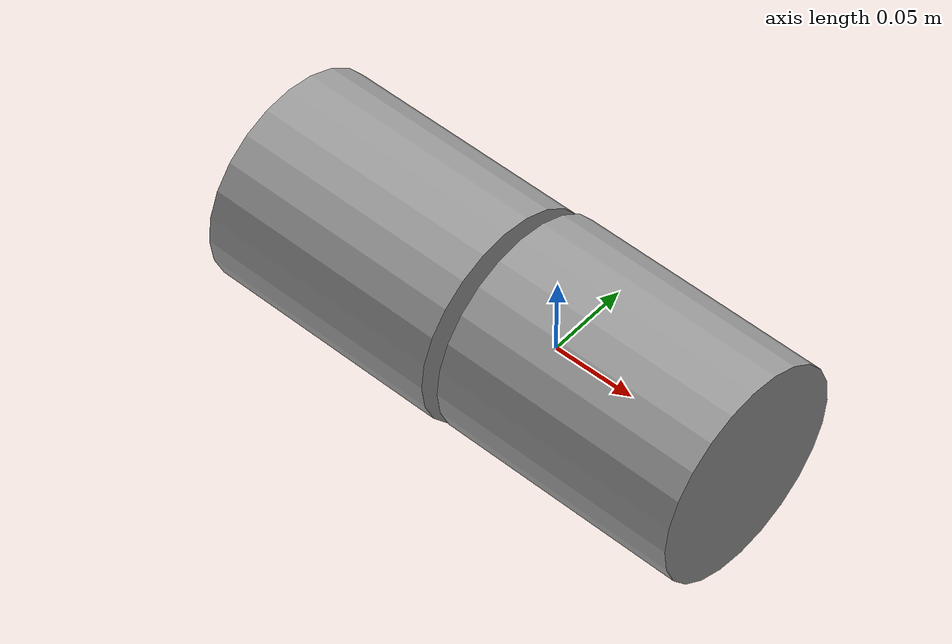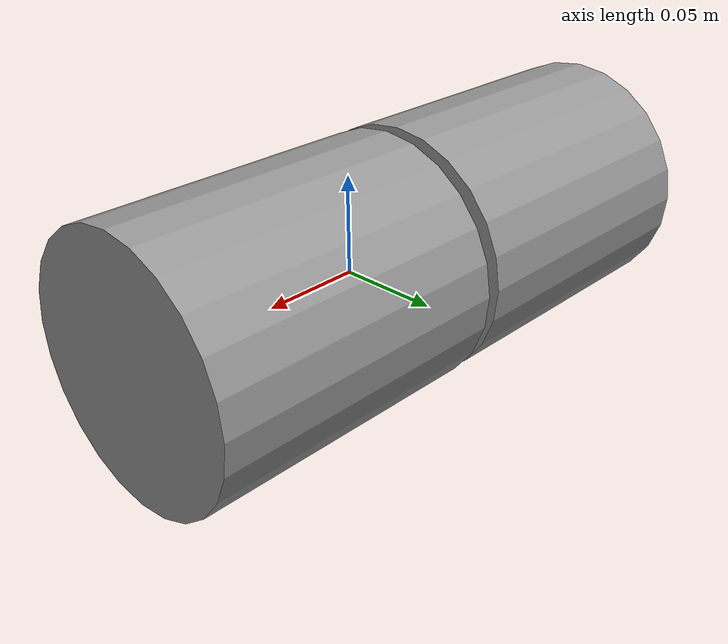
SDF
<?xml version='1.0'?>
<sdf version='1.6'>
  <model name='MittleresGelenk'>
    <link name='MittleresGelenk1'>
      <inertial>
        <mass>5.27</mass>
        <inertia>
          <ixx>1.89583</ixx>
          <ixy>0</ixy>
          <ixz>0</ixz>
          <iyy>1.89583</iyy>
          <iyz>0</iyz>
          <izz>1.625</izz>
        </inertia>
        <pose frame=''>0 0 0 0 -0 0</pose>
      </inertial>
      <pose frame=''>-0.1105 0 -0 3.01682 1.56535 3.00517</pose>
      <gravity>1</gravity>
      <self_collide>0</self_collide>
      <kinematic>0</kinematic>
      <enable_wind>0</enable_wind>
      <visual name='visual'>
        <pose frame=''>0 0 0 0 -0 0</pose>
        <geometry>
          <cylinder>
            <radius>0.065</radius>
            <length>0.152</length>
          </cylinder>
        </geometry>
        <material>
          <lighting>1</lighting>
          <script>
            <uri>file://media/materials/scripts/gazebo.material</uri>
            <name>Gazebo/Grey</name>
          </script>
          <shader type='vertex'>
            <normal_map>__default__</normal_map>
          </shader>
          <ambient>0.3 0.3 0.3 1</ambient>
          <diffuse>0.7 0.7 0.7 1</diffuse>
          <specular>0.01 0.01 0.01 1</specular>
          <emissive>0 0 0 1</emissive>
        </material>
        <transparency>0</transparency>
        <cast_shadows>1</cast_shadows>
      </visual>
      <collision name='collision'>
        <laser_retro>0</laser_retro>
        <max_contacts>10</max_contacts>
        <pose frame=''>0 0 0 0 -0 0</pose>
        <geometry>
          <cylinder>
            <radius>0.065</radius>
            <length>0.152</length>
          </cylinder>
        </geometry>
        <surface>
          <friction>
            <ode>
              <mu>1</mu>
              <mu2>1</mu2>
              <fdir1>0 0 0</fdir1>
              <slip1>0</slip1>
              <slip2>0</slip2>
            </ode>
            <torsional>
              <coefficient>1</coefficient>
              <patch_radius>0</patch_radius>
              <surface_radius>0</surface_radius>
              <use_patch_radius>1</use_patch_radius>
              <ode>
                <slip>0</slip>
              </ode>
            </torsional>
          </friction>
          <bounce>
            <restitution_coefficient>0</restitution_coefficient>
            <threshold>1e+06</threshold>
          </bounce>
          <contact>
            <collide_without_contact>0</collide_without_contact>
            <collide_without_contact_bitmask>1</collide_without_contact_bitmask>
            <collide_bitmask>1</collide_bitmask>
            <ode>
              <soft_cfm>0</soft_cfm>
              <soft_erp>0.2</soft_erp>
              <kp>1e+13</kp>
              <kd>1</kd>
              <max_vel>0.01</max_vel>
              <min_depth>0</min_depth>
            </ode>
            <bullet>
              <split_impulse>1</split_impulse>
              <split_impulse_penetration_threshold>-0.01</split_impulse_penetration_threshold>
              <soft_cfm>0</soft_cfm>
              <soft_erp>0.2</soft_erp>
              <kp>1e+13</kp>
              <kd>1</kd>
            </bullet>
          </contact>
        </surface>
      </collision>
    </link>
    <link name='MittleresGelenk2'>
      <inertial>
        <mass>5.27</mass>
        <inertia>
          <ixx>1.89583</ixx>
          <ixy>0</ixy>
          <ixz>0</ixz>
          <iyy>1.89583</iyy>
          <iyz>0</iyz>
          <izz>1.625</izz>
        </inertia>
        <pose frame=''>0 0 0 0 -0 0</pose>
      </inertial>
      <pose frame=''>0.0505 -0 -0 3.01682 1.56535 3.00517</pose>
      <gravity>1</gravity>
      <self_collide>0</self_collide>
      <kinematic>0</kinematic>
      <enable_wind>0</enable_wind>
      <visual name='visual'>
        <pose frame=''>0 0 0 0 -0 0</pose>
        <geometry>
          <cylinder>
            <radius>0.065</radius>
            <length>0.152</length>
          </cylinder>
        </geometry>
        <material>
          <lighting>1</lighting>
          <script>
            <uri>file://media/materials/scripts/gazebo.material</uri>
            <name>Gazebo/Grey</name>
          </script>
          <shader type='vertex'>
            <normal_map>__default__</normal_map>
          </shader>
          <ambient>0.3 0.3 0.3 1</ambient>
          <diffuse>0.7 0.7 0.7 1</diffuse>
          <specular>0.01 0.01 0.01 1</specular>
          <emissive>0 0 0 1</emissive>
        </material>
        <transparency>0</transparency>
        <cast_shadows>1</cast_shadows>
      </visual>
      <collision name='collision'>
        <laser_retro>0</laser_retro>
        <max_contacts>10</max_contacts>
        <pose frame=''>0 0 0 0 -0 0</pose>
        <geometry>
          <cylinder>
            <radius>0.065</radius>
            <length>0.152</length>
          </cylinder>
        </geometry>
        <surface>
          <friction>
            <ode>
              <mu>1</mu>
              <mu2>1</mu2>
              <fdir1>0 0 0</fdir1>
              <slip1>0</slip1>
              <slip2>0</slip2>
            </ode>
            <torsional>
              <coefficient>1</coefficient>
              <patch_radius>0</patch_radius>
              <surface_radius>0</surface_radius>
              <use_patch_radius>1</use_patch_radius>
              <ode>
                <slip>0</slip>
              </ode>
            </torsional>
          </friction>
          <bounce>
            <restitution_coefficient>0</restitution_coefficient>
            <threshold>1e+06</threshold>
          </bounce>
          <contact>
            <collide_without_contact>0</collide_without_contact>
            <collide_without_contact_bitmask>1</collide_without_contact_bitmask>
            <collide_bitmask>1</collide_bitmask>
            <ode>
              <soft_cfm>0</soft_cfm>
              <soft_erp>0.2</soft_erp>
              <kp>1e+13</kp>
              <kd>1</kd>
              <max_vel>0.01</max_vel>
              <min_depth>0</min_depth>
            </ode>
            <bullet>
              <split_impulse>1</split_impulse>
              <split_impulse_penetration_threshold>-0.01</split_impulse_penetration_threshold>
              <soft_cfm>0</soft_cfm>
              <soft_erp>0.2</soft_erp>
              <kp>1e+13</kp>
              <kd>1</kd>
            </bullet>
          </contact>
        </surface>
      </collision>
    </link>
    <joint name='MittleresGelenkLink' type='revolute'>
      <parent>MittleresGelenk1</parent>
      <child>MittleresGelenk2</child>
      <pose frame=''>-0 0 -0.12 0 -0 0</pose>
      <axis>
        <xyz>0 0 1</xyz>
        <use_parent_model_frame>0</use_parent_model_frame>
        <limit>
          <lower>-1.79769e+308</lower>
          <upper>1.79769e+308</upper>
          <effort>-1</effort>
          <velocity>-1</velocity>
        </limit>
        <dynamics>
          <spring_reference>0</spring_reference>
          <spring_stiffness>0</spring_stiffness>
          <damping>0</damping>
          <friction>0</friction>
        </dynamics>
      </axis>
      <physics>
        <ode>
          <limit>
            <cfm>0</cfm>
            <erp>0.2</erp>
          </limit>
          <suspension>
            <cfm>0</cfm>
            <erp>0.2</erp>
          </suspension>
        </ode>
      </physics>
    </joint>
    <static>0</static>
    <allow_auto_disable>1</allow_auto_disable>
  </model>
</sdf>
